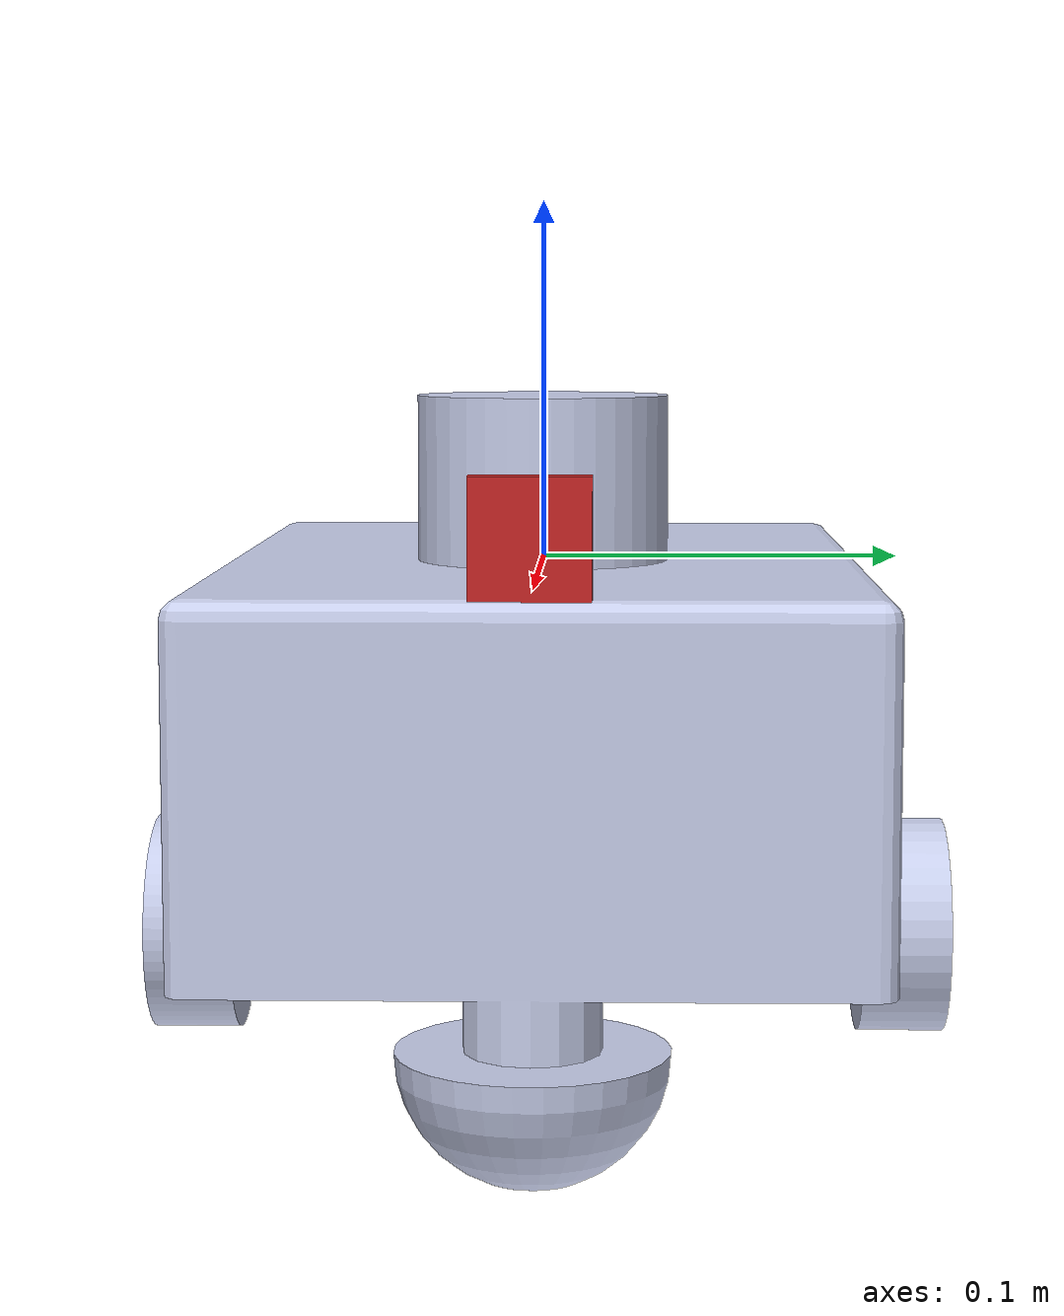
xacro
<?xml version="1.0" encoding="utf-8"?>
<robot name="my_robot">

  <link name="robot_footprint"></link>
  <joint name="robot_footprint_joint" type="fixed">
    <origin xyz="0 0 0" rpy="0 0 -1.57" />
    <parent link="robot_footprint"/>
    <child link="base_link" />
  </joint>

  <link name="base_link">
    <inertial>
      <origin xyz="0 0.00086857 -0.052452" rpy="0 0 0" />
      <mass value="4.8015" />
      <inertia ixx="0.031989" ixy="-1.3236E-18" ixz="-6.8277E-21" iyy="0.017464" iyz="0.00037688" izz="0.039875" />
    </inertial>
    <visual>
      <origin xyz="0 0 0" rpy="0 0 0" />
      <geometry>
        <mesh filename="package://my_robot/meshes/base_link.STL" />
      </geometry>
      <material name="">
        <color rgba="0.79216 0.81961 0.93333 1" />
      </material>
    </visual>
    <collision>
      <origin xyz="0 0 0" rpy="0 0 0" />
      <geometry>
        <mesh filename="package://my_robot/meshes/base_link.STL" />
      </geometry>
    </collision>
  </link>

  <link name="camera_link">
    <visual>
      <geometry>
        <box size="0.03 0.01 0.03"/>
      </geometry>
      <material name="red"/>
    </visual>
  </link>

  <joint name="camera_joint" type="fixed">
    <parent link="base_link"/>
    <child link="camera_link"/>
    <origin xyz="0.0 0.12486 0.015" rpy="0 0 0"/>
  </joint>

  <link name="raspicam"></link>

  <joint name="camera_optical_joint" type="fixed">
    <parent link="camera_link"/>
    <child link="raspicam"/>
    <origin xyz="0 0 0" rpy="0 -1.57 0"/>
  </joint>

  <link name="laser">
    <inertial>
      <origin xyz="9.8765E-13 -7.5229E-13 -0.0275" rpy="0 0 0" />
      <mass value="0.21166" />
      <inertia ixx="0.00011818" ixy="1.6676E-21" ixz="-2.1229E-36" iyy="0.00011818" iyz="-3.1058E-21" izz="0.00012964" />
    </inertial>
    <visual>
      <origin xyz="0 0 0" rpy="0 0 0" />
      <geometry>
        <mesh filename="package://my_robot/meshes/laser_link.STL" />
      </geometry>
      <material name="">
        <color rgba="0.79216 0.81961 0.93333 1" />
      </material>
    </visual>
    <collision>
      <origin xyz="0 0 0" rpy="0 0 0" />
      <geometry>
        <mesh filename="package://my_robot/meshes/laser_link.STL" />
      </geometry>
    </collision>
  </link>
  <joint name="laser_joint" type="fixed">
    <origin xyz="0 0.010725 0.046" rpy="0 0 1.571" />
    <parent link="base_link" />
    <child link="laser" />
    <axis xyz="0 0 0" />
  </joint>
  <link name="left_wheel">
    <inertial>
      <origin xyz="0.01304 0 0" rpy="0 0 0" />
      <mass value="0.086502" />
      <inertia ixx="4.5566E-05" ixy="7.1534E-20" ixz="7.1695E-20" iyy="2.7696E-05" iyz="2.1146E-34" izz="2.7696E-05" />
    </inertial>
    <visual>
      <origin xyz="0 0 0" rpy="0 0 0" />
      <geometry>
        <mesh filename="package://my_robot/meshes/left_wheel.STL" />
      </geometry>
      <material name="">
        <color rgba="0.79216 0.81961 0.93333 1" />
      </material>
    </visual>
    <collision>
      <origin xyz="0 0 0" rpy="0 0 0" />
      <geometry>
        <mesh filename="package://my_robot/meshes/left_wheel.STL" />
      </geometry>
    </collision>
  </link>
  <joint name="left_wheel_joint" type="continuous">
    <origin xyz="-0.1205 -0.051915 -0.118" rpy="0 0 0" />
    <parent link="base_link" />
    <child link="left_wheel" />
    <axis xyz="1 0 0" />
    <limit effort="0" velocity="2" />
  </joint>
  <link name="right_wheel">
    <inertial>
      <origin xyz="-0.01304 -4.4409E-16 2.2204E-16" rpy="0 0 0" />
      <mass value="0.086502" />
      <inertia ixx="4.5566E-05" ixy="1.7026E-19" ixz="-7.1695E-20" iyy="2.7696E-05" iyz="-7.8374E-34" izz="2.7696E-05" />
    </inertial>
    <visual>
      <origin xyz="0 0 0" rpy="0 0 0" />
      <geometry>
        <mesh filename="package://my_robot/meshes/right_wheel.STL" />
      </geometry>
      <material name="">
        <color rgba="0.79216 0.81961 0.93333 1" />
      </material>
    </visual>
    <collision>
      <origin xyz="0 0 0" rpy="0 0 0" />
      <geometry>
        <mesh filename="package://my_robot/meshes/right_wheel.STL" />
      </geometry>
    </collision>
  </link>
  <joint name="right_wheel_joint" type="continuous">
    <origin xyz="0.1205 -0.051915 -0.118" rpy="0 0 0" />
    <parent link="base_link" />
    <child link="right_wheel" />
    <axis xyz="1 0 0" />
    <limit effort="0" velocity="2" />
  </joint>
</robot>
